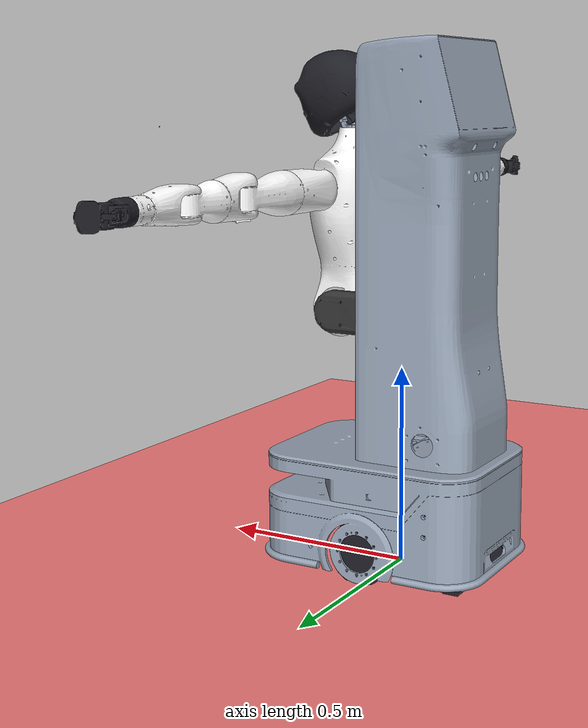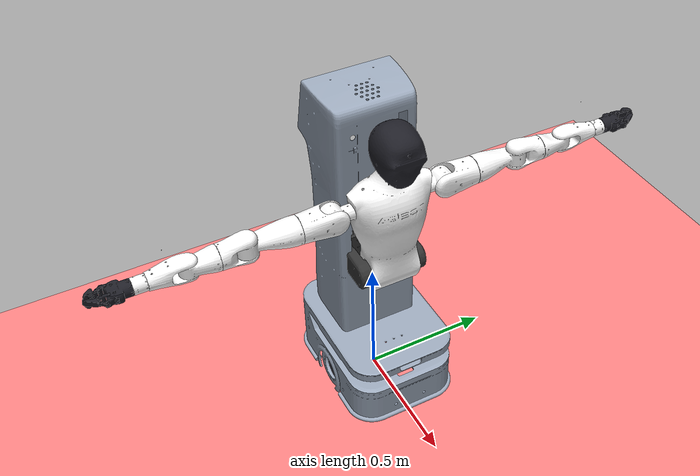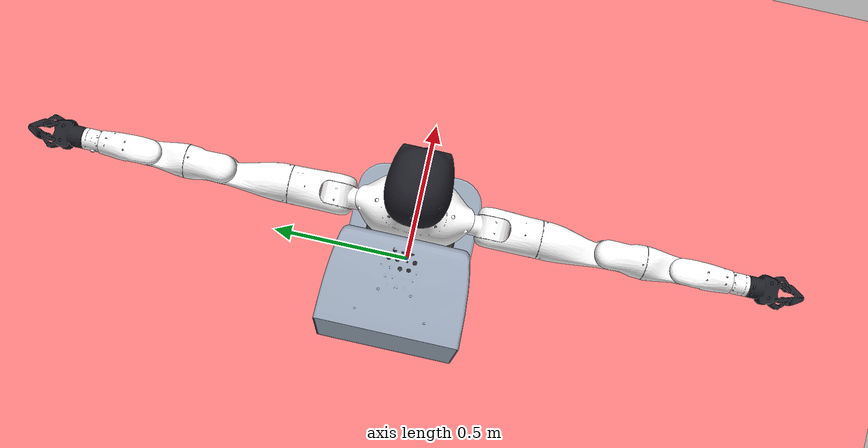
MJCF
<mujoco model="g1_omnipicker">
  <compiler angle="radian" />
  <default>
    <joint armature="0.01" damping="0.1" frictionloss="0.02" />
  </default>
  <custom>
    <text name="head" data="idx11_head_joint1 idx12_head_joint2" />
    <text name="torso" data="idx01_body_joint1 idx02_body_joint2" />
    <text name="arm_l" data="idx21_arm_l_joint1 idx22_arm_l_joint2 idx23_arm_l_joint3 idx24_arm_l_joint4 idx25_arm_l_joint5 idx26_arm_l_joint6 idx27_arm_l_joint7" />
    <text name="arm_r" data="idx61_arm_r_joint1 idx62_arm_r_joint2 idx63_arm_r_joint3 idx64_arm_r_joint4 idx65_arm_r_joint5 idx66_arm_r_joint6 idx67_arm_r_joint7" />
    <text name="gripper_l" data="idx31_gripper_l_inner_joint1 idx32_gripper_l_inner_joint3 idx33_gripper_l_inner_joint4 idx39_gripper_l_inner_joint2 idx41_gripper_l_outer_joint1 idx42_gripper_l_outer_joint3 idx43_gripper_l_outer_joint4 idx49_gripper_l_outer_joint2" />
    <text name="gripper_r" data="idx71_gripper_r_inner_joint1 idx72_gripper_r_inner_joint3 idx73_gripper_r_inner_joint4 idx79_gripper_r_inner_joint2 idx81_gripper_r_outer_joint1 idx82_gripper_r_outer_joint3 idx83_gripper_r_outer_joint4 idx89_gripper_r_outer_joint2" />
    <text name="base" data="wheel_l_joint wheel_r_joint wheel_f_joint wheel_b_joint" />
  </custom>

  <asset>
    <mesh name="base_link" content_type="model/stl" file="assets/meshes/G1/base_link.stl" />
    <mesh name="body_link1" content_type="model/stl" file="assets/meshes/G1/body_link1.stl" />
    <mesh name="body_link2" content_type="model/stl" file="assets/meshes/G1/body_link2.stl" />
    <mesh name="head_link1" content_type="model/stl" file="assets/meshes/G1/head_link1.stl" />
    <mesh name="head_link2" content_type="model/stl" file="assets/meshes/G1/head_link2.stl" />
    <mesh name="arm_l_base_link" content_type="model/stl" file="assets/meshes/G1/arm_l_base_link.stl" />
    <mesh name="arm_r_base_link" content_type="model/stl" file="assets/meshes/G1/arm_r_base_link.stl" />
    <mesh name="arm_l_link1" content_type="model/stl" file="assets/meshes/G1/arm_l_link1.stl" />
    <mesh name="arm_l_link2" content_type="model/stl" file="assets/meshes/G1/arm_l_link2.stl" />
    <mesh name="arm_l_link3" content_type="model/stl" file="assets/meshes/G1/arm_l_link3.stl" />
    <mesh name="arm_l_link4" content_type="model/stl" file="assets/meshes/G1/arm_l_link4.stl" />
    <mesh name="arm_l_link5" content_type="model/stl" file="assets/meshes/G1/arm_l_link5.stl" />
    <mesh name="arm_l_link6" content_type="model/stl" file="assets/meshes/G1/arm_l_link6.stl" />
    <mesh name="arm_l_link7" content_type="model/stl" file="assets/meshes/G1/arm_l_link7.stl" />
    <mesh name="arm_r_link1" content_type="model/stl" file="assets/meshes/G1/arm_r_link1.stl" />
    <mesh name="arm_r_link2" content_type="model/stl" file="assets/meshes/G1/arm_r_link2.stl" />
    <mesh name="arm_r_link3" content_type="model/stl" file="assets/meshes/G1/arm_r_link3.stl" />
    <mesh name="arm_r_link4" content_type="model/stl" file="assets/meshes/G1/arm_r_link4.stl" />
    <mesh name="arm_r_link5" content_type="model/stl" file="assets/meshes/G1/arm_r_link5.stl" />
    <mesh name="arm_r_link6" content_type="model/stl" file="assets/meshes/G1/arm_r_link6.stl" />
    <mesh name="arm_r_link7" content_type="model/stl" file="assets/meshes/G1/arm_r_link7.stl" />
    <mesh name="gripper_base_link" content_type="model/stl" file="assets/meshes/omnipicker/gripper_base_link.stl" />
    <mesh name="inner_link1" content_type="model/stl" file="assets/meshes/omnipicker/inner_link1.stl" />
    <mesh name="inner_link3" content_type="model/stl" file="assets/meshes/omnipicker/inner_link3.stl" />
    <mesh name="inner_link4" content_type="model/stl" file="assets/meshes/omnipicker/inner_link4.stl" />
    <mesh name="inner_link2" content_type="model/stl" file="assets/meshes/omnipicker/inner_link2.stl" />
    <mesh name="outer_link1" content_type="model/stl" file="assets/meshes/omnipicker/outer_link1.stl" />
    <mesh name="outer_link3" content_type="model/stl" file="assets/meshes/omnipicker/outer_link3.stl" />
    <mesh name="outer_link4" content_type="model/stl" file="assets/meshes/omnipicker/outer_link4.stl" />
    <mesh name="outer_link2" content_type="model/stl" file="assets/meshes/omnipicker/outer_link2.stl" />

    <texture name="alloy_white_basecolor" type="2d" file="assets/texture/Alloy_White/Alloy_01_Basecolor.png" />
    <texture name="alloy_white_normal" type="2d" file="assets/texture/Alloy_White/Alloy_01_Normal.png" />
    <texture name="alloy_white_packed" type="2d" file="assets/texture/Alloy_White/Alloy_01_Packed.png" />
    <texture name="brushedmetal_basecolor" type="2d" file="assets/texture/Brushedmetal/Brushedmetal_01_Basecolor.png" />
    <texture name="brushedmetal_normal" type="2d" file="assets/texture/Brushedmetal/Brushedmetal_01_Normal.png" />
    <texture name="brushedmetal_packed" type="2d" file="assets/texture/Brushedmetal/Brushedmetal_01_Packed.png" />
    <texture name="composite_black_basecolor" type="2d" file="assets/texture/Composite_Black/Composite_1_Basecolor.png" />
    <texture name="composite_black_normal" type="2d" file="assets/texture/Composite_Black/Composite_1_Normal.png" />
    <texture name="composite_black_packed" type="2d" file="assets/texture/Composite_Black/Composite_1_Packed.png" />
    <texture name="paint_grey_basecolor" type="2d" file="assets/texture/Paint_Grey/Paint_01_Basecolor.png" />
    <texture name="paint_grey_normal" type="2d" file="assets/texture/Paint_Grey/Paint_01_Normal.png" />
    <texture name="paint_grey_packed" type="2d" file="assets/texture/Paint_Grey/Paint_01_Packed.png" />

    <material name="alloy_white" metallic="0.9" roughness="0.3" rgba="1 1 1 1">
      <layer texture="alloy_white_basecolor" role="rgb" />
      <layer texture="alloy_white_normal" role="normal" />
      <layer texture="alloy_white_packed" role="roughness" />
    </material>
    <material name="brushedmetal" metallic="1.0" roughness="0.35" rgba="0.2 0.2 0.2 1">
      <layer texture="brushedmetal_basecolor" role="rgb" />
      <layer texture="brushedmetal_normal" role="normal" />
      <layer texture="brushedmetal_packed" role="roughness" />
    </material>

    <material name="composite_black" metallic="0.0" roughness="0.9" rgba="0.12 0.12 0.15 1">
      <layer texture="composite_black_basecolor" role="rgb" />
      <layer texture="composite_black_normal" role="normal" />
    </material >

    <material name="paint_grey" metallic="0.1" roughness="0.55" rgba="0.6 0.65 0.72 1">
      <layer texture="paint_grey_basecolor" role="rgb" />
      <layer texture="paint_grey_normal" role="normal" />
      <layer texture="paint_grey_packed" role="roughness" />
    </material>
  </asset>
  <worldbody>
    <geom name="ground" size="10 10 1" type="plane" rgba="1 0.5 0.5 0.5" group="1" />
    <body name="robot_holder1" pos="0 0 0">
      <joint name="free_joint" type="free"/>
      <inertial pos="0 0 0.08" quat="1 0 0 0" mass="60" diaginertia="1 1 1" />
      <geom name="default_geom0" type="mesh" contype="0" conaffinity="0" group="1" density="0" mesh="base_link" material="paint_grey" />
      <geom name="default_geom1" pos="0 0 0.3" type="box" size="0.2 0.2 0.08" group="3" rgba="1 1 0 1"/>

      <body name="body_link1" pos="0 0 0.6485">

        <inertial pos="0.0338352 -0.00248044 0.000838431" quat="0.70654 0.707661 -0.00251284 0.00337775" mass="3.26275" diaginertia="0.0128303 0.011172 0.00610409" />
        <geom name="default_geom3" type="mesh" contype="0" conaffinity="0" group="1" density="0" mesh="body_link1" material="brushedmetal" />
        <geom name="body_link1_geom" type="mesh" group="3" mesh="body_link1" material="paint_grey" />

        <body name="body_link2" pos="0.131 0 0" quat="0.707107 -0.707107 0 0">
          <inertial pos="0.202202 0.00892157 0.002094" quat="-0.309612 0.669057 -0.144642 0.659986" mass="8.28389" diaginertia="0.0566071 0.0514324 0.0241845" />
          <geom name="default_geom6" pos="0 0 0" quat="0.707107 0 0 -0.707107" type="mesh" contype="0" conaffinity="0" group="1" density="0" mesh="body_link2" material="alloy_white" />
          <geom name="default_geom7" size="0.0966232 0.0434853" pos="0.00683594 -0.000343561 0" type="cylinder" group="3" />
          <geom name="default_geom8" size="0.172852 0.0905386 0.15625" pos="0.008 -0.248 0" quat="0.707105 0 0 -0.707108" type="box" group="3" />
          <geom name="default_geom9" pos="0 -0.305 0.025" quat="1 0 0 0" type="mesh" contype="0" conaffinity="0" group="1" density="0" mesh="arm_l_base_link" material="brushedmetal" />
          <geom name="default_geom10" size="0.0542692 0.045675" pos="-0.00171064 -0.303628 0.053225" type="cylinder" group="3" />
          <geom name="default_geom11" pos="0 -0.305 -0.025" quat="0 0 -1 0" type="mesh" contype="0" conaffinity="0" group="1" density="0" mesh="arm_r_base_link" material="brushedmetal" />
          <geom name="default_geom12" size="0.0544722 0.045675" pos="-0.00116355 -0.307049 -0.055325" quat="0 0 -1 0" type="cylinder" group="3" />
          <body name="head_link1" pos="0 -0.441 0" quat="0.707107 0.707107 0 0">
            <inertial pos="0.0446068 0.00241753 0.0528374" quat="0.38837 0.389207 -0.612687 0.567716" mass="0.414343" diaginertia="0.000173888 0.000155933 0.000117565" />
            <joint name="idx11_head_joint1" pos="0 0 0" axis="0 0 1" range="-1.5708 1.5708" actuatorfrcrange="-50 50" />
            <geom name="default_geom13" type="mesh" contype="0" conaffinity="0" group="1" density="0" mesh="head_link1" material="paint_grey" />
            <body name="head_link2" pos="0.050238 0 0.060065" quat="0.707107 -0.707107 0 0">
              <body name="camera_head_body1" pos="0.077 -0.072 -0.011">
                <geom type="sphere" size="0.001"/>
                <body name="camera_head_body2" euler="1.5707 0.5235 -1.5707 ">
                  <geom type="sphere" size="0.001"/>
                  <camera name="camera_head" resolution="640 480" fovy="90"/>
                </body>
              </body>
              <inertial pos="0.0257009 0.0316254 -3.7739e-05" quat="0.661342 0.654801 0.258526 0.258893" mass="0.707064" diaginertia="0.00237749 0.00185 0.00168017" />
              <joint name="idx12_head_joint2" pos="0 0 0" axis="0 0 1" range="-0.349066 0.523599" actuatorfrcrange="-50 50" />
              <geom name="default_geom14" pos="0 0 0" quat="0 -1 0 0" type="mesh" contype="0" conaffinity="0" group="1" density="0" mesh="head_link2" material="composite_black" />
              <geom name="default_geom15" size="0.112571" pos="0.011501 -0.02526 0.000853715" group="3" />
            </body>
          </body>
          <body name="arm_l_link1" pos="0 -0.305 0.2109">
            <inertial pos="-0.0012655 -0.00043778 -0.018388" quat="0.999377 0.00141724 -0.00704567 0.0345516" mass="0.4936" diaginertia="0.00075451 0.000657089 0.00031839" />
            <joint name="idx21_arm_l_joint1" pos="0 0 0" axis="0 0 1" range="-3.14 3.14" actuatorfrcrange="-60 60"/>
            <geom name="default_geom16" type="mesh" contype="0" conaffinity="0" group="1" density="0" mesh="arm_l_link1" material="alloy_white" />
            <geom name="default_geom17" size="0.0557927 0.0832103" pos="0.00268144 0.000613378 -0.0407112" quat="0.809017 0 0 -0.587785" type="cylinder" group="3" rgba="1 1 1 1" />
            <body name="arm_l_link2" quat="0.5 -0.5 -0.5 0.5">
              <inertial pos="5.3037e-05 -0.078258 0.0047084" quat="0.4655 0.507294 -0.534234 0.490467" mass="0.46245" diaginertia="0.000728062 0.000656998 0.00043243" />
              <joint name="idx22_arm_l_joint2" pos="0 0 0" axis="0 0 1" range="-2.09 2.09" actuatorfrcrange="-60 60" />
              <geom name="default_geom18" type="mesh" contype="0" conaffinity="0" group="1" density="0" mesh="arm_l_link2" material="alloy_white" />
              <geom name="default_geom19" size="0.0630242 0.0904296" pos="0 -0.0440621 0.000976562" quat="0.707107 0.707107 0 0" type="cylinder" group="3" rgba="1 1 1 1" />
              <body name="arm_l_link3" pos="0 -0.305 0" quat="-0.5 -0.5 -0.5 0.5">
                <inertial pos="-0.0012032 0.0008714 -0.055265" quat="0.716744 0.00286354 -0.0130205 0.697209" mass="0.50026" diaginertia="0.00142764 0.00130171 0.000335118" />
                <joint name="idx23_arm_l_joint3" pos="0 0 0" axis="0 0 1" range="-3.1 3.1" actuatorfrcrange="-60 60" />
                <geom name="default_geom20" type="mesh" contype="0" conaffinity="0" group="1" density="0" mesh="arm_l_link3" material="alloy_white" />
                <geom name="default_geom21" size="0.0542326 0.110349" pos="-0.00274505 0.000636008 -0.0722394" quat="0 0.309017 0.951057 0" type="cylinder" group="3" rgba="1 1 1 1" />
                <body name="arm_l_link4" quat="0 0 -0.707107 0.707107">
                  <inertial pos="3.7035e-05 -0.06248 0.0025377" quat="0.497379 0.504086 -0.500364 0.498144" mass="0.27473" diaginertia="0.00031239 0.000292842 0.000188518" />
                  <joint name="idx24_arm_l_joint4" pos="0 0 0" axis="0 0 1" range="-1.75 0" actuatorfrcrange="-60 60" />
                  <geom name="default_geom22" type="mesh" contype="0" conaffinity="0" group="1" density="0" mesh="arm_l_link4" material="alloy_white" />
                  <geom name="default_geom23" size="0.0578917 0.0774777" pos="0 -0.038179 -0.00439453" quat="0.707107 0.707107 0 0" type="cylinder" group="3" rgba="1 1 1 1" />
                  <body name="arm_l_link5" pos="0 -0.1975 0" quat="0 0 0.707107 -0.707107">
                    <inertial pos="-7.9404e-07 -0.00023094 -0.024143" quat="0.706596 -0.0269081 0.0270445 0.706588" mass="0.25139" diaginertia="0.000289006 0.00023516 0.000129764" />
                    <joint name="idx25_arm_l_joint5" pos="0 0 0" axis="0 0 1" range="-3.1 3.1" actuatorfrcrange="-30 30" />
                    <geom name="default_geom24" type="mesh" contype="0" conaffinity="0" group="1" density="0" mesh="arm_l_link5" material="alloy_white" />
                    <geom name="default_geom25" size="0.0456146 0.067262" pos="0.00013162 -5.83555e-05 -0.0333058" quat="0.951057 0 0 -0.309017" type="cylinder" group="3" rgba="1 1 1 1" />
                    <body name="arm_l_link6" quat="0.707107 -0.707107 0 0">
                      <inertial pos="1.769e-06 -0.086692 0.0025571" quat="0.47333 0.529128 -0.524871 0.469567" mass="0.26634" diaginertia="0.00032677 0.000314339 0.000142371" />
                      <joint name="idx26_arm_l_joint6" pos="0 0 0" axis="0 0 1" range="-1.74 1.74" actuatorfrcrange="-30 30" />
                      <geom name="default_geom26" type="mesh" contype="0" conaffinity="0" group="1" density="0" mesh="arm_l_link6" material="alloy_white" />
                      <geom name="default_geom27" size="0.0485074 0.09083" pos="0.000254946 -0.0554777 -0.00193943" quat="0.522838 -0.476211 -0.477658 -0.521255" type="cylinder" group="3" rgba="1 1 1 1" />
                      <body name="arm_l_end_link" pos="0 -0.1805 0" quat="0.707107 0.707107 0 0">
                        <inertial pos="-0.00012146 -3.86298e-05 0.0228846" quat="0.999995 -0.00236518 -0.00169232 0.000938134" mass="0.29746" diaginertia="0.000211736 0.000196817 0.000110095" />
                        <joint name="idx27_arm_l_joint7" pos="0 0 0" axis="0 0 1" range="-3.1 3.1" actuatorfrcrange="-30 30" />
                        <geom name="default_geom28" type="mesh" contype="0" conaffinity="0" group="1" density="0" mesh="arm_l_link7" material="alloy_white" />
                        <geom name="default_geom29" size="0.0308 0.023" pos="-4.55295e-05 -0.00230047 -0.0225" quat="0 0 1 0" type="cylinder" group="3" rgba="1 1 1 1" />
                        <geom name="default_geom30" quat="0.707107 0 0 0.707107" type="mesh" contype="0" conaffinity="0" group="1" density="0" mesh="gripper_base_link" material="composite_black" />
                        <geom name="default_geom31" quat="0.707107 0 0 0.707107" type="mesh" group="3" mesh="gripper_base_link" material="composite_black" />
                        <site name="ee_center_site_l" pos="-0.00146473 0 0.08" quat="0.707105 0 -0.707108 0" group="3" />
                        <body name="camera_left_body1" pos="0.02 -0.157 -0.129">
                          <geom type="sphere" size="0.001"/>
                          <body name="camera_left_body2" euler="1.5707 0 0">
                            <geom type="sphere" size="0.001"/>
                            <camera name="camera_left" resolution="640 480" fovy="90"/>
                          </body>
                        </body>

                        <body name="gripper_l_inner_link1" pos="0.0195 0 0.0565" quat="0.496702 -0.503276 -0.496702 -0.503276">
                          <inertial pos="0.0094685 0.0068806 6.5437e-05" quat="0.488058 0.00022793 0.00062709 0.872811" mass="0.025428" diaginertia="2.65562e-06 1.69368e-06 1.5501e-06" />
                          <joint name="idx31_gripper_l_inner_joint1" pos="0 0 0" axis="0 0 1" range="-0.785398 0.7" actuatorfrcrange="-10 10" />
                          <geom name="default_geom32" type="mesh" contype="0" conaffinity="0" group="1" density="0" mesh="inner_link1" material="composite_black" />
                          <geom name="default_geom33" type="mesh" group="3" mesh="inner_link1" material="composite_black" />
                          <body name="gripper_l_inner_link3" pos="0.030852 0.018551 0">
                            <inertial pos="0.0088027 -0.007035 1.6424e-05" quat="0.259339 0.661207 -0.251356 0.657547" mass="0.0040132" diaginertia="1.70091e-07 1.66561e-07 5.03584e-08" />
                            <joint name="idx32_gripper_l_inner_joint3" pos="0 0 0" axis="0 0 -1" range="-2 2" actuatorfrcrange="-10 10" />
                            <geom name="default_geom34" type="mesh" contype="0" conaffinity="0" group="1" density="0" mesh="inner_link3" material="composite_black" />
                            <geom name="default_geom35" type="mesh" group="3" mesh="inner_link3" material="composite_black" friction="2.0 0.1 0.1" />
                            <body name="gripper_l_inner_link4" pos="0.018118 -0.01574 0">
                              <inertial pos="0.012508 -0.0079729 9.4339e-05" quat="0.575033 0.575033 0.411506 0.411506" mass="0.018029" diaginertia="2.75843e-06 2.3252e-06 9.52273e-07" />
                              <joint name="idx33_gripper_l_inner_joint4" pos="0 0 0" axis="0 0 -1" range="-2 2" actuatorfrcrange="-10 10" />
                              <geom name="default_geom36" type="mesh" contype="0" conaffinity="0" group="1" density="0" mesh="inner_link4" material="composite_black" />
                              <geom name="default_geom37" type="mesh" group="3" mesh="inner_link4" friction="2.0 0.1 0.1" />
                            </body>
                          </body>
                        </body>
                        <body name="gripper_l_inner_link2" pos="0.021633 0 0.07387" quat="0.496702 -0.503276 -0.496702 -0.503276">
                          <inertial pos="0.014869 -0.0036066 0.00029307" quat="0.800794 2.10378e-06 -6.78039e-07 0.59894" mass="0.022591" diaginertia="4.76981e-06 4.35879e-06 6.0445e-07" />
                          <joint name="idx39_gripper_l_inner_joint2" pos="0 0 0" axis="0 0 -1" range="-2 2" actuatorfrcrange="-10 10" />
                          <geom name="default_geom38" type="mesh" contype="0" conaffinity="0" group="1" density="0" mesh="inner_link2" material="composite_black" />
                          <geom name="default_geom39" type="mesh" group="3" mesh="inner_link2" material="composite_black" />
                        </body>
                        <body name="gripper_l_outer_link1" pos="-0.0195 0 0.0565" quat="0.496702 -0.503276 -0.496702 -0.503276">
                          <inertial pos="0.0095051 -0.0068479 6.8268e-05" quat="0.872477 -0.000843631 -0.000472499 0.488655" mass="0.025428" diaginertia="2.65502e-06 1.69428e-06 1.5501e-06" />
                          <joint name="idx41_gripper_l_outer_joint1" pos="0 0 0" axis="0 0 -1" range="-0.7 0.785398" actuatorfrcrange="-10 10" />
                          <geom name="default_geom40" type="mesh" contype="0" conaffinity="0" group="1" density="0" mesh="outer_link1" material="composite_black" />
                          <geom name="default_geom41" type="mesh" group="3" mesh="outer_link1" material="composite_black" />
                          <body name="gripper_l_outer_link3" pos="0.030852 -0.018551 0">
                            <inertial pos="0.0088027 0.007035 -1.6424e-05" quat="-0.251356 0.657548 0.259339 0.661207" mass="0.0040132" diaginertia="1.70091e-07 1.66561e-07 5.03584e-08" />
                            <joint name="idx42_gripper_l_outer_joint3" pos="0 0 0" axis="0 0 -1" range="-2 2" actuatorfrcrange="-10 10" />
                            <geom name="default_geom42" type="mesh" contype="0" conaffinity="0" group="1" density="0" mesh="outer_link3" material="composite_black" />
                            <geom name="default_geom43" type="mesh" group="3" mesh="outer_link3" material="composite_black" friction="2.0 0.1 0.1" />
                            <body name="gripper_l_outer_link4" pos="0.018118 0.01574 0">
                              <inertial pos="0.016206 0.0094593 4.7668e-05" quat="0.574355 3.4175e-06 6.47256e-06 0.818606" mass="0.035835" diaginertia="1.16461e-05 8.09447e-06 4.6309e-06" />
                              <joint name="idx43_gripper_l_outer_joint4" pos="0 0 0" axis="0 0 -1" range="-2 2" actuatorfrcrange="-10 10" />
                              <geom name="default_geom44" type="mesh" contype="0" conaffinity="0" group="1" density="0" mesh="outer_link4" material="composite_black" />
                              <geom name="default_geom45" type="mesh" group="3" mesh="outer_link4" friction="2.0 0.1 0.1" />
                            </body>
                          </body>
                        </body>
                        <body name="gripper_l_outer_link2" pos="-0.021633 0 0.07387" quat="0.496702 -0.503276 -0.496702 -0.503276">
                          <inertial pos="0.016268 0.0040555 0.00030323" quat="0.599119 -2.137e-06 -5.96717e-07 0.80066" mass="0.025142" diaginertia="6.26903e-06 5.85397e-06 6.2389e-07" />
                          <joint name="idx49_gripper_l_outer_joint2" pos="0 0 0" axis="0 0 1" range="-2 2" actuatorfrcrange="-10 10" />
                          <geom name="default_geom46" type="mesh" contype="0" conaffinity="0" group="1" density="0" mesh="outer_link2" material="composite_black" />
                          <geom name="default_geom47" type="mesh" group="3" mesh="outer_link2" material="composite_black" />
                        </body>
                      </body>
                    </body>
                  </body>
                </body>
              </body>
            </body>
          </body>
          <body name="arm_r_link1" pos="0 -0.305 -0.213" quat="0 0 -1 0">
            <inertial pos="0.0012679 -0.0001581 -0.018109" quat="0.999913 0.00172272 0.00210705 -0.0129351" mass="0.4936" diaginertia="0.00075403 0.000660442 0.000315518" />
            <joint name="idx61_arm_r_joint1" pos="0 0 0" axis="0 0 1" range="-3.14 3.14" actuatorfrcrange="-60 60"/>
            <geom name="default_geom48" type="mesh" contype="0" conaffinity="0" group="1" density="0" mesh="arm_r_link1" material="alloy_white" />
            <geom name="default_geom49" size="0.054839 0.0832136" pos="0.00018724 -0.00200487 -0.0407119" quat="0 -0.809017 -0.587785 0" type="cylinder" group="3" rgba="1 1 1 1" />
            <body name="arm_r_link2" quat="0.5 -0.5 0.5 -0.5">
              <inertial pos="-0.00044207 -0.082298 0.00019486" quat="0.476302 0.549206 -0.503867 0.466506" mass="0.41662" diaginertia="0.00058032 0.00054597 0.00039261" />
              <joint name="idx62_arm_r_joint2" pos="0 0 0" axis="0 0 1" range="-2.09 2.09" actuatorfrcrange="-60 60" />
              <geom name="default_geom50" type="mesh" contype="0" conaffinity="0" group="1" density="0" mesh="arm_r_link2" material="alloy_white" />
              <geom name="default_geom51" size="0.0630242 0.0904296" pos="0 -0.0440621 0.000976562" quat="0.707107 0.707107 0 0" type="cylinder" group="3" rgba="1 1 1 1" />
              <body name="arm_r_link3" pos="0 -0.305 0" quat="0.5 0.5 -0.5 0.5">
                <inertial pos="0.0010558 4.4416e-05 -0.056128" quat="0.702309 0.0145002 -0.00484504 0.711708" mass="0.49413" diaginertia="0.00142079 0.00134067 0.000375087" />
                <joint name="idx63_arm_r_joint3" pos="0 0 0" axis="0 0 1" range="-3.1 3.1" actuatorfrcrange="-60 60" />
                <geom name="default_geom52" type="mesh" contype="0" conaffinity="0" group="1" density="0" mesh="arm_r_link3" material="alloy_white" />
                <geom name="default_geom53" size="0.0521616 0.110307" pos="0.000655993 -2.2629e-05 -0.072193" type="cylinder" group="3" rgba="1 1 1 1" />
                <body name="arm_r_link4" quat="0 0 -0.707107 0.707107">
                  <inertial pos="2.4212e-05 -0.06248 0.002536" quat="0.49733 0.504026 -0.500463 0.498154" mass="0.27473" diaginertia="0.00031239 0.000292832 0.000188508" />
                  <joint name="idx64_arm_r_joint4" pos="0 0 0" axis="0 0 1" range="0 1.75" actuatorfrcrange="-60 60" />
                  <geom name="default_geom54" type="mesh" contype="0" conaffinity="0" group="1" density="0" mesh="arm_r_link4" material="alloy_white" />
                  <geom name="default_geom55" size="0.0578917 0.0774777" pos="0 -0.038179 -0.00439453" quat="0.707107 0.707107 0 0" type="cylinder" group="3" rgba="1 1 1 1" />
                  <body name="arm_r_link5" pos="0 -0.1975 0" quat="0 0 0.707107 -0.707107">
                    <inertial pos="2.6223e-06 -0.00023041 -0.024141" quat="0.706561 -0.0269128 0.0270485 0.706623" mass="0.25139" diaginertia="0.000288996 0.00023516 0.000129754" />
                    <joint name="idx65_arm_r_joint5" pos="0 0 0" axis="0 0 1" range="-3.1 3.1" actuatorfrcrange="-30 30" />
                    <geom name="default_geom56" type="mesh" contype="0" conaffinity="0" group="1" density="0" mesh="arm_r_link5" material="alloy_white" />
                    <geom name="default_geom57" size="0.0456203 0.067119" pos="-0.000222555 -4.22748e-05 -0.0334495" type="cylinder" group="3" rgba="1 1 1 1" />
                    <body name="arm_r_link6" quat="0.707107 -0.707107 0 0">
                      <inertial pos="5.0382e-06 -0.086696 0.002556" quat="0.473321 0.529129 -0.524875 0.46957" mass="0.26634" diaginertia="0.00032676 0.000314339 0.000142371" />
                      <joint name="idx66_arm_r_joint6" pos="0 0 0" axis="0 0 1" range="-1.74 1.74" actuatorfrcrange="-30 30" />
                      <geom name="default_geom58" type="mesh" contype="0" conaffinity="0" group="1" density="0" mesh="arm_r_link6" material="alloy_white" />
                      <geom name="default_geom59" size="0.0485715 0.0913624" pos="-1.77825e-05 -0.055076 -0.00174472" quat="0.521813 -0.477274 -0.478144 -0.520863" type="cylinder" group="3" rgba="1 1 1 1" />
                      <body name="arm_r_end_link" pos="0 -0.1805 0" quat="0.707107 0.707107 0 0">
                        <inertial pos="-0.000121465 -3.86298e-05 0.0228846" quat="0.999995 -0.00236524 -0.00169184 0.000938876" mass="0.29746" diaginertia="0.000211736 0.000196817 0.000110095" />
                        <joint name="idx67_arm_r_joint7" pos="0 0 0" axis="0 0 1" range="-3.1 3.1" actuatorfrcrange="-30 30" />
                        <geom name="default_geom60" type="mesh" contype="0" conaffinity="0" group="1" density="0" mesh="arm_r_link7" material="alloy_white" />
                        <geom name="default_geom61" size="0.0308 0.023" pos="-4.55295e-05 -0.00230047 -0.0225" quat="0 0 1 0" type="cylinder" group="3" rgba="1 1 1 1" />
                        <geom name="default_geom62" quat="0.707107 0 0 -0.707107" type="mesh" contype="0" conaffinity="0" group="1" density="0" mesh="gripper_base_link" material="composite_black" />
                        <geom name="default_geom63" quat="0.707107 0 0 -0.707107" type="mesh" group="3" mesh="gripper_base_link" material="composite_black" />
                        <site name="ee_center_site_r" pos="-0.00307497 0 0.08" quat="0.707105 0 -0.707108 0" group="3" />

                        <body name="camera_right_body1" pos="-0.024 -0.124 -0.107">
                          <geom type="sphere" size="0.001"/>
                          <body name="camera_right_body2" euler="1.5707 0 0">
                            <geom type="sphere" size="0.001"/>
                            <camera name="camera_right" resolution="640 480" fovy="90"/>
                          </body>
                        </body>

                        <body name="gripper_r_inner_link1" pos="-0.0195 0 0.0565" quat="-0.503276 -0.496702 0.503276 -0.496702">
                          <inertial pos="0.0094685 0.0068806 6.5437e-05" quat="0.488058 0.00022793 0.00062709 0.872811" mass="0.025428" diaginertia="2.65562e-06 1.69368e-06 1.5501e-06" />
                          <joint name="idx71_gripper_r_inner_joint1" pos="0 0 0" axis="0 0 1" range="-0.785398 0.7" actuatorfrcrange="-10 10" />
                          <geom name="default_geom64" type="mesh" contype="0" conaffinity="0" group="1" density="0" mesh="inner_link1" material="composite_black" />
                          <geom name="default_geom65" type="mesh" group="3" mesh="inner_link1" material="composite_black" />
                          <body name="gripper_r_inner_link3" pos="0.030852 0.018551 0">
                            <inertial pos="0.0088027 -0.007035 1.6424e-05" quat="0.259339 0.661207 -0.251356 0.657547" mass="0.0040132" diaginertia="1.70091e-07 1.66561e-07 5.03584e-08" />
                            <joint name="idx72_gripper_r_inner_joint3" pos="0 0 0" axis="0 0 -1" range="-2 2" actuatorfrcrange="-10 10" />
                            <geom name="default_geom66" type="mesh" contype="0" conaffinity="0" group="1" density="0" mesh="inner_link3" material="composite_black" />
                            <geom name="default_geom67" type="mesh" group="3" mesh="inner_link3" material="composite_black" friction="2.0 0.1 0.1" />
                            <body name="gripper_r_inner_link4" pos="0.018118 -0.01574 0">
                              <inertial pos="0.012508 -0.0079729 9.4339e-05" quat="0.575033 0.575033 0.411506 0.411506" mass="0.018029" diaginertia="2.75843e-06 2.3252e-06 9.52273e-07" />
                              <joint name="idx73_gripper_r_inner_joint4" pos="0 0 0" axis="0 0 -1" range="-2 2" actuatorfrcrange="-10 10" />
                              <geom name="default_geom68" type="mesh" contype="0" conaffinity="0" group="1" density="0" mesh="inner_link4" material="composite_black" />
                              <geom name="default_geom69" type="mesh" group="3" mesh="inner_link4" friction="2.0 0.1 0.1" />
                            </body>
                          </body>
                        </body>
                        <body name="gripper_r_inner_link2" pos="-0.021633 0 0.07387" quat="-0.503276 -0.496702 0.503276 -0.496702">
                          <inertial pos="0.014869 -0.0036066 0.00029307" quat="0.800794 2.10378e-06 -6.78039e-07 0.59894" mass="0.022591" diaginertia="4.76981e-06 4.35879e-06 6.0445e-07" />
                          <joint name="idx79_gripper_r_inner_joint2" pos="0 0 0" axis="0 0 -1" range="-2 2" actuatorfrcrange="-10 10" />
                          <geom name="default_geom70" type="mesh" contype="0" conaffinity="0" group="1" density="0" mesh="inner_link2" material="composite_black" />
                          <geom name="default_geom71" type="mesh" group="3" mesh="inner_link2" material="composite_black" />
                        </body>
                        <body name="gripper_r_outer_link1" pos="0.0195 0 0.0565" quat="-0.503276 -0.496702 0.503276 -0.496702">
                          <inertial pos="0.0095051 -0.0068479 6.8268e-05" quat="0.872477 -0.000843631 -0.000472499 0.488655" mass="0.025428" diaginertia="2.65502e-06 1.69428e-06 1.5501e-06" />
                          <joint name="idx81_gripper_r_outer_joint1" pos="0 0 0" axis="0 0 -1" range="-0.7 0.785398" actuatorfrcrange="-10 10" />
                          <geom name="default_geom72" type="mesh" contype="0" conaffinity="0" group="1" density="0" mesh="outer_link1" material="composite_black" />
                          <geom name="default_geom73" type="mesh" group="3" mesh="outer_link1" material="composite_black" />
                          <body name="gripper_r_outer_link3" pos="0.030852 -0.018551 0">
                            <inertial pos="0.0088027 0.007035 -1.6424e-05" quat="-0.251356 0.657548 0.259339 0.661207" mass="0.0040132" diaginertia="1.70091e-07 1.66561e-07 5.03584e-08" />
                            <joint name="idx82_gripper_r_outer_joint3" pos="0 0 0" axis="0 0 -1" range="-2 2" actuatorfrcrange="-10 10" />
                            <geom name="default_geom74" type="mesh" contype="0" conaffinity="0" group="1" density="0" mesh="outer_link3" material="composite_black" />
                            <geom name="default_geom75" type="mesh" group="3" mesh="outer_link3" material="composite_black" friction="2.0 0.1 0.1" />
                            <body name="gripper_r_outer_link4" pos="0.018118 0.01574 0">
                              <inertial pos="0.016206 0.0094593 4.7668e-05" quat="0.574355 3.4175e-06 6.47256e-06 0.818606" mass="0.035835" diaginertia="1.16461e-05 8.09447e-06 4.6309e-06" />
                              <joint name="idx83_gripper_r_outer_joint4" pos="0 0 0" axis="0 0 -1" range="-2 2" actuatorfrcrange="-10 10" />
                              <geom name="default_geom76" type="mesh" contype="0" conaffinity="0" group="1" density="0" mesh="outer_link4" material="composite_black" />
                              <geom name="default_geom77" type="mesh" group="3" mesh="outer_link4" friction="2.0 0.1 0.1" />
                            </body>
                          </body>
                        </body>
                        <body name="gripper_r_outer_link2" pos="0.021633 0 0.07387" quat="-0.503276 -0.496702 0.503276 -0.496702">
                          <inertial pos="0.016268 0.0040555 0.00030323" quat="0.599119 -2.137e-06 -5.96717e-07 0.80066" mass="0.025142" diaginertia="6.26903e-06 5.85397e-06 6.2389e-07" />
                          <joint name="idx89_gripper_r_outer_joint2" pos="0 0 0" axis="0 0 1" range="-2 2" actuatorfrcrange="-10 10"/>
                          <geom name="default_geom78" type="mesh" contype="0" conaffinity="0" group="1" density="0" mesh="outer_link2" material="composite_black" />
                          <geom name="default_geom79" type="mesh" group="3" mesh="outer_link2" material="composite_black" />
                        </body>
                      </body>0
                    </body>
                  </body>
                </body>
              </body>
            </body>
          </body>
        </body>
      </body>
      <body name="wheel_l_link" pos="0.02 0.16 0.07">
        <joint name="wheel_l_joint" pos="0 0 0" axis="0 1 0" />
        <geom name="default_geom80" size="0.08 0.03" quat="0.707105 0.707108 0 0" type="cylinder" contype="0" conaffinity="0" group="1" density="0" material="composite_black" />
        <geom name="default_geom80_" size="0.008 0.003" quat="0.707105 0.707108 0 0" type="cylinder" group="3" rgba="0 0 0 1" />
      </body>
      <body name="wheel_r_link" pos="0.02 -0.16 0.07">
        <joint name="wheel_r_joint" pos="0 0 0" axis="0 1 0" />
        <geom name="default_geom82" size="0.08 0.03" quat="0.707105 0.707108 0 0" type="cylinder" contype="0" conaffinity="0" group="1" density="0" material="composite_black" />
        <geom name="default_geom82_" size="0.008 0.003" quat="0.707105 0.707108 0 0" type="cylinder" group="3" rgba="0 0 0 1" />
      </body>

      <body name="wheel_fl_link" pos="0.21 0.13 0.02">
        <body name="wheel_fl_steer_body">
          <inertial pos="0 0 0" mass="0.05" diaginertia="0.001 0.001 0.001" />
          <joint name="wheel_fl_steer_joint" pos="0 0 0" axis="0 0 1" range="-0.6 0.6" damping="5" />
          <body name="wheel_fl_drive_body">
            <joint name="wheel_fl_joint" pos="0 0 0" axis="0 1 0" />
            <geom name="fl_" size="0.03 0.025" quat="0.707105 0.707108 0 0" contype="0" conaffinity="0" group="1" density="0" material="composite_black" type="cylinder"/>
            <geom name="fl" size="0.03 0.025" condim="4" friction="2.0 0.1 0.1" quat="0.707105 0.707108 0 0" group="3" rgba="0 0 0 1" type="cylinder"/>
          </body>
        </body>
      </body>

      <body name="wheel_fr_link" pos="0.21 -0.13 0.02">
        <body name="wheel_fr_steer_body">
          <inertial pos="0 0 0" mass="0.05" diaginertia="0.001 0.001 0.001" />
          <joint name="wheel_fr_steer_joint" pos="0 0 0" axis="0 0 1" range="-0.6 0.6" damping="5" />
          <body name="wheel_fr_drive_body">
            <joint name="wheel_fr_joint" pos="0 0 0" axis="0 1 0" />
            <geom name="fr_" size="0.03 0.025" quat="0.707105 0.707108 0 0" contype="0" conaffinity="0" group="1" density="0" material="composite_black" type="cylinder"/>
            <geom name="fr" size="0.03 0.025" condim="4" friction="2.0 0.1 0.1" quat="0.707105 0.707108 0 0" group="3" rgba="0 0 0 1" type="cylinder"/>
          </body>
        </body>
      </body>

      <body name="wheel_bl_link" pos="-0.21 0.13 0.02">
        <body name="wheel_bl_steer_body">
          <inertial pos="0 0 0" mass="0.05" diaginertia="0.001 0.001 0.001" />
          <joint name="wheel_bl_steer_joint" pos="0 0 0" axis="0 0 1" range="-0.6 0.6" damping="5" />

          <body name="wheel_bl_body">
            <joint name="wheel_bl_joint" pos="0 0 0" axis="0 1 0" />
            <geom name="bl_" size="0.03 0.025" quat="0.707105 0.707108 0 0" contype="0" conaffinity="0" group="1" density="0" material="composite_black" type="cylinder"/>
            <geom name="bl" size="0.03 0.025" condim="4" friction="2.0 0.1 0.1" quat="0.707105 0.707108 0 0" group="3" rgba="0 0 0 1" type="cylinder" />
          </body>
        </body>
      </body>

      <body name="wheel_br_link" pos="-0.21 -0.13 0.02">
        <body name="wheel_br_steer_body">
          <inertial pos="0 0 0" mass="0.05" diaginertia="0.001 0.001 0.001" />
          <joint name="wheel_br_steer_joint" pos="0 0 0" axis="0 0 1" range="-0.6 0.6" damping="5" />
          <body name="wheel_br_body" pos="0 0 0">
            <joint name="wheel_br_joint" pos="0 0 0" axis="0 1 0" />
            <geom name="br_" size="0.03 0.025" quat="0.707105 0.707108 0 0" contype="0" conaffinity="0" group="1" density="0" material="composite_black" type="cylinder"/>
            <geom name="br" size="0.03 0.025" condim="4" friction="2.0 0.1 0.1" quat="0.707105 0.707108 0 0" group="3" rgba="0 0 0 1" type="cylinder" />
          </body>
        </body>
      </body>
    </body>
  </worldbody>
  <actuator>
    <general name="idx11_head_joint1_pctrl" joint="idx11_head_joint1" group="1" ctrllimited="true" ctrlrange="-1.5708 1.5708" forcelimited="true" forcerange="-50 50" biastype="affine" biasprm="0 -1" />
    <general name="idx12_head_joint2_pctrl" joint="idx12_head_joint2" group="1" ctrllimited="true" ctrlrange="-0.349066 0.523599" forcelimited="true" forcerange="-50 50" biastype="affine" biasprm="0 -1" />

    <general name="idx31_gripper_l_inner_joint1_pctrl" joint="idx31_gripper_l_inner_joint1" group="2" ctrllimited="true" ctrlrange="-0.785398 0.7" forcelimited="true" forcerange="-10 10" biastype="affine" biasprm="0 -1" />
    <general name="idx32_gripper_l_inner_joint3_pctrl" joint="idx32_gripper_l_inner_joint3" group="2" ctrllimited="true" ctrlrange="-2 2" forcelimited="true" forcerange="-10 10" biastype="affine" biasprm="0 -1" />
    <general name="idx33_gripper_l_inner_joint4_pctrl" joint="idx33_gripper_l_inner_joint4" group="2" ctrllimited="true" ctrlrange="-2 2" forcelimited="true" forcerange="-10 10" biastype="affine" biasprm="0 -1" />
    <general name="idx39_gripper_l_inner_joint2_pctrl" joint="idx39_gripper_l_inner_joint2" group="2" ctrllimited="true" ctrlrange="-2 2" forcelimited="true" forcerange="-10 10" biastype="affine" biasprm="0 -1" />
    <general name="idx41_gripper_l_outer_joint1_pctrl" joint="idx41_gripper_l_outer_joint1" group="2" ctrllimited="true" ctrlrange="-0.7 0.785398" forcelimited="true" forcerange="-10 10" biastype="affine" biasprm="0 -1" />
    <general name="idx42_gripper_l_outer_joint3_pctrl" joint="idx42_gripper_l_outer_joint3" group="2" ctrllimited="true" ctrlrange="-2 2" forcelimited="true" forcerange="-10 10" biastype="affine" biasprm="0 -1" />
    <general name="idx43_gripper_l_outer_joint4_pctrl" joint="idx43_gripper_l_outer_joint4" group="2" ctrllimited="true" ctrlrange="-2 2" forcelimited="true" forcerange="-10 10" biastype="affine" biasprm="0 -1" />
    <general name="idx49_gripper_l_outer_joint2_pctrl" joint="idx49_gripper_l_outer_joint2" group="2" ctrllimited="true" ctrlrange="-2 2" forcelimited="true" forcerange="-10 10" biastype="affine" biasprm="0 -1" />

    <general name="idx71_gripper_r_inner_joint1_pctrl" joint="idx71_gripper_r_inner_joint1" group="2" ctrllimited="true" ctrlrange="-0.785398 0.7" forcelimited="true" forcerange="-10 10" biastype="affine" biasprm="0 -1" />
    <general name="idx72_gripper_r_inner_joint3_pctrl" joint="idx72_gripper_r_inner_joint3" group="2" ctrllimited="true" ctrlrange="-2 2" forcelimited="true" forcerange="-10 10" biastype="affine" biasprm="0 -1" />
    <general name="idx73_gripper_r_inner_joint4_pctrl" joint="idx73_gripper_r_inner_joint4" group="2" ctrllimited="true" ctrlrange="-2 2" forcelimited="true" forcerange="-10 10" biastype="affine" biasprm="0 -1" />
    <general name="idx79_gripper_r_inner_joint2_pctrl" joint="idx79_gripper_r_inner_joint2" group="2" ctrllimited="true" ctrlrange="-2 2" forcelimited="true" forcerange="-10 10" biastype="affine" biasprm="0 -1" />
    <general name="idx81_gripper_r_outer_joint1_pctrl" joint="idx81_gripper_r_outer_joint1" group="2" ctrllimited="true" ctrlrange="-0.7 0.785398" forcelimited="true" forcerange="-10 10" biastype="affine" biasprm="0 -1" />
    <general name="idx82_gripper_r_outer_joint3_pctrl" joint="idx82_gripper_r_outer_joint3" group="2" ctrllimited="true" ctrlrange="-2 2" forcelimited="true" forcerange="-10 10" biastype="affine" biasprm="0 -1" />
    <general name="idx83_gripper_r_outer_joint4_pctrl" joint="idx83_gripper_r_outer_joint4" group="2" ctrllimited="true" ctrlrange="-2 2" forcelimited="true" forcerange="-10 10" biastype="affine" biasprm="0 -1" />
    <general name="idx89_gripper_r_outer_joint2_pctrl" joint="idx89_gripper_r_outer_joint2" group="2" ctrllimited="true" ctrlrange="-2 2" forcelimited="true" forcerange="-10 10" biastype="affine" biasprm="0 -1" />

    <general name="idx11_head_joint1_mctrl" joint="idx11_head_joint1" ctrllimited="true" ctrlrange="-50 50" />
    <general name="idx12_head_joint2_mctrl" joint="idx12_head_joint2" ctrllimited="true" ctrlrange="-50 50" />

    <general name="idx61_arm_r_joint1_mctrl" joint="idx61_arm_r_joint1" ctrllimited="true" ctrlrange="-60 60"/>
    <general name="idx62_arm_r_joint2_mctrl" joint="idx62_arm_r_joint2" ctrllimited="true" ctrlrange="-60 60" />
    <general name="idx63_arm_r_joint3_mctrl" joint="idx63_arm_r_joint3" ctrllimited="true" ctrlrange="-60 60" />
    <general name="idx64_arm_r_joint4_mctrl" joint="idx64_arm_r_joint4" ctrllimited="true" ctrlrange="-60 60" />
    <general name="idx65_arm_r_joint5_mctrl" joint="idx65_arm_r_joint5" ctrllimited="true" ctrlrange="-30 30" />
    <general name="idx66_arm_r_joint6_mctrl" joint="idx66_arm_r_joint6" ctrllimited="true" ctrlrange="-30 30" />
    <general name="idx67_arm_r_joint7_mctrl" joint="idx67_arm_r_joint7" ctrllimited="true" ctrlrange="-30 30" />
    <general name="idx21_arm_l_joint1_mctrl" joint="idx21_arm_l_joint1" ctrllimited="true" ctrlrange="-60 60"/>
    <general name="idx22_arm_l_joint2_mctrl" joint="idx22_arm_l_joint2" ctrllimited="true" ctrlrange="-60 60" />
    <general name="idx23_arm_l_joint3_mctrl" joint="idx23_arm_l_joint3" ctrllimited="true" ctrlrange="-60 60" />
    <general name="idx24_arm_l_joint4_mctrl" joint="idx24_arm_l_joint4" ctrllimited="true" ctrlrange="-60 60" />
    <general name="idx25_arm_l_joint5_mctrl" joint="idx25_arm_l_joint5" ctrllimited="true" ctrlrange="-30 30" />
    <general name="idx26_arm_l_joint6_mctrl" joint="idx26_arm_l_joint6" ctrllimited="true" ctrlrange="-30 30" />
    <general name="idx27_arm_l_joint7_mctrl" joint="idx27_arm_l_joint7" ctrllimited="true" ctrlrange="-30 30" />

    <velocity name="wheel_fl_joint_mctrl" joint="wheel_fl_joint" kv="3" ctrllimited="true" ctrlrange="-30 30" />
    <velocity name="wheel_fr_joint_mctrl" joint="wheel_fr_joint" kv="3" ctrllimited="true" ctrlrange="-30 30" />

    <position name="wheel_fl_steer_joint_pctrl" joint="wheel_fl_steer_joint" kp="200" ctrllimited="true" ctrlrange="-0.6 0.6" forcelimited="true" forcerange="-200 200" />
    <position name="wheel_fr_steer_joint_pctrl" joint="wheel_fr_steer_joint" kp="200" ctrllimited="true" ctrlrange="-0.6 0.6" forcelimited="true" forcerange="-200 200" />
    <position name="wheel_br_steer_joint_pctrl" joint="wheel_br_steer_joint" kp="200" ctrllimited="true" ctrlrange="-0.6 0.6" forcelimited="true" forcerange="-200 200" />
    <position name="wheel_bl_steer_joint_pctrl" joint="wheel_bl_steer_joint" kp="200" ctrllimited="true" ctrlrange="-0.6 0.6" forcelimited="true" forcerange="-200 200" />

  </actuator>
  <equality>
    <connect name="default_equality0" body1="gripper_r_outer_link4" body2="gripper_r_outer_link2" anchor="0 0.01 0" solref="0.005"/>
    <connect name="default_equality1" body1="gripper_r_inner_link4" body2="gripper_r_inner_link2" anchor="0 -0.01 0" solref="0.005"/>
    <connect name="default_equality2" body1="gripper_l_inner_link4" body2="gripper_l_inner_link2" anchor="0 -0.01 0" solref="0.005"/>
    <connect name="default_equality3" body1="gripper_l_outer_link4" body2="gripper_l_outer_link2" anchor="0 0.01 0" solref="0.005"/>

  </equality>
  <contact>
    <exclude body1="arm_r_link1" body2="arm_r_link2" />
    <exclude body1="arm_l_link1" body2="arm_l_link2" />

    <exclude body1="body_link1" body2="arm_l_link1" />
    <exclude body1="body_link1" body2="arm_r_link1" />

    <exclude body1="body_link2" body2="arm_l_link1" />
    <exclude body1="body_link2" body2="arm_l_link2" />
    <exclude body1="body_link2" body2="arm_r_link1" />
    <exclude body1="body_link2" body2="arm_r_link2" />

    <exclude body1="robot_holder1" body2="arm_r_link1" />
    <exclude body1="robot_holder1" body2="arm_l_link1" />

    <exclude body1="robot_holder1" body2="wheel_fl_link" />
    <exclude body1="robot_holder1" body2="wheel_fr_link" />
    <exclude body1="robot_holder1" body2="wheel_bl_link" />
    <exclude body1="robot_holder1" body2="wheel_br_link" />

    <exclude body1="body_link1" body2="wheel_fl_link" />
    <exclude body1="body_link1" body2="wheel_fr_link" />
    <exclude body1="body_link1" body2="wheel_bl_link" />
    <exclude body1="body_link1" body2="wheel_br_link" />

    <exclude body1="wheel_fl_steer_body" body2="wheel_fl_link" />
    <exclude body1="wheel_fr_steer_body" body2="wheel_fr_link" />
    <exclude body1="wheel_fl_drive_body" body2="wheel_fl_steer_body" />
    <exclude body1="wheel_fr_drive_body" body2="wheel_fr_steer_body" />

  </contact>

</mujoco>
